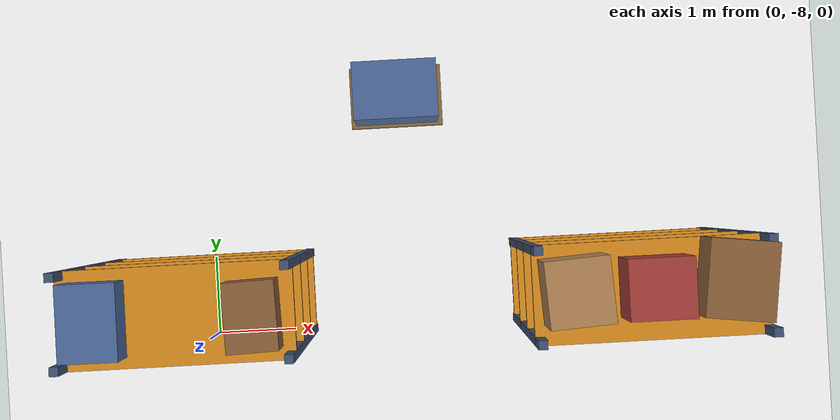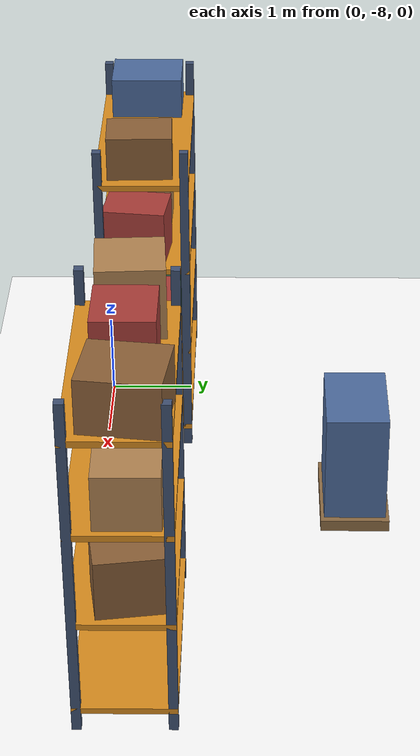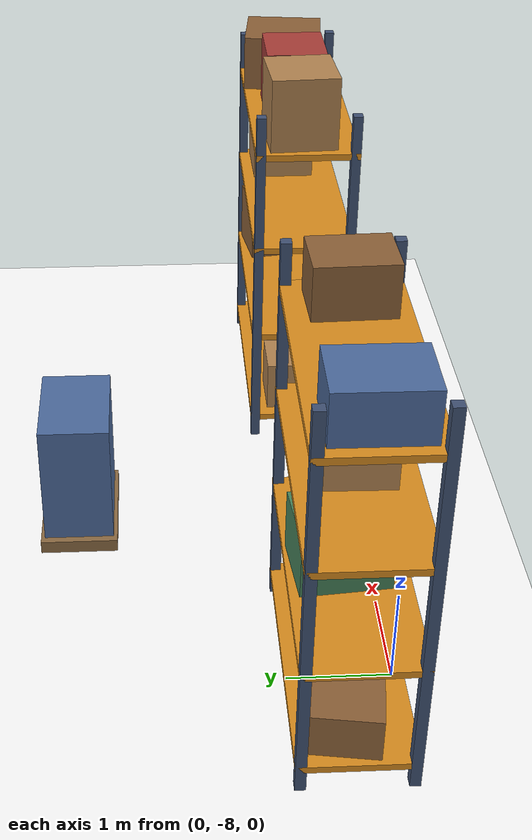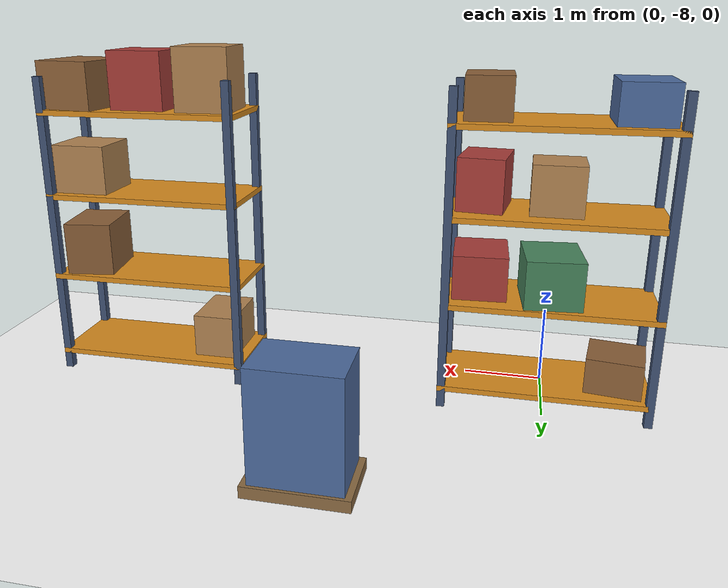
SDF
<sdf version="1.9">
 <world name="warehouse">
  <model name="ground_plane">
   <static>true</static>
   <link name="link">
    <collision name="collision">
     <geometry><plane><normal>0 0 1</normal><size>200 200</size></plane></geometry>
     <surface><friction><ode><mu>1.0</mu><mu2>1.0</mu2></ode></friction></surface>
    </collision>
    <visual name="visual">
     <geometry><plane><normal>0 0 1</normal><size>200 200</size></plane></geometry>
     <material>
      <ambient>0.5 0.5 0.5 1</ambient>
      <diffuse>1 1 1 1</diffuse>
      <pbr>
       <metal>
        <albedo_map>model://surfaces/materials/textures/floor.png</albedo_map>
        <metalness>0</metalness>
        <roughness>0.9</roughness>
       </metal>
      </pbr>
     </material>
    </visual>
   </link>
  </model>
  <model name="rack_0_2">
   <static>true</static>
   <pose>0 -7.5 0 0 0 0</pose>
   <link name="link">
    <visual name="upright_0_v">
     <pose>-1.25 -0.5 2 0 0 0</pose>
     <geometry><box><size>0.1 0.1 4</size></box></geometry>
     <material><ambient>0.125 0.16 0.225 1</ambient><diffuse>0.25 0.32 0.45 1</diffuse></material>
    </visual>
    <collision name="upright_0_c">
     <pose>-1.25 -0.5 2 0 0 0</pose>
     <geometry><box><size>0.1 0.1 4</size></box></geometry>
    </collision>
    <visual name="upright_1_v">
     <pose>-1.25 0.5 2 0 0 0</pose>
     <geometry><box><size>0.1 0.1 4</size></box></geometry>
     <material><ambient>0.125 0.16 0.225 1</ambient><diffuse>0.25 0.32 0.45 1</diffuse></material>
    </visual>
    <collision name="upright_1_c">
     <pose>-1.25 0.5 2 0 0 0</pose>
     <geometry><box><size>0.1 0.1 4</size></box></geometry>
    </collision>
    <visual name="upright_2_v">
     <pose>1.25 -0.5 2 0 0 0</pose>
     <geometry><box><size>0.1 0.1 4</size></box></geometry>
     <material><ambient>0.125 0.16 0.225 1</ambient><diffuse>0.25 0.32 0.45 1</diffuse></material>
    </visual>
    <collision name="upright_2_c">
     <pose>1.25 -0.5 2 0 0 0</pose>
     <geometry><box><size>0.1 0.1 4</size></box></geometry>
    </collision>
    <visual name="upright_3_v">
     <pose>1.25 0.5 2 0 0 0</pose>
     <geometry><box><size>0.1 0.1 4</size></box></geometry>
     <material><ambient>0.125 0.16 0.225 1</ambient><diffuse>0.25 0.32 0.45 1</diffuse></material>
    </visual>
    <collision name="upright_3_c">
     <pose>1.25 0.5 2 0 0 0</pose>
     <geometry><box><size>0.1 0.1 4</size></box></geometry>
    </collision>
    <visual name="deck_0_v">
     <pose>0 0 0.25 0 0 0</pose>
     <geometry><box><size>2.6 1.1 0.07</size></box></geometry>
     <material><ambient>0.425 0.275 0.06 1</ambient><diffuse>0.85 0.55 0.12 1</diffuse></material>
    </visual>
    <collision name="deck_0_c">
     <pose>0 0 0.25 0 0 0</pose>
     <geometry><box><size>2.6 1.1 0.07</size></box></geometry>
    </collision>
    <visual name="cargo_0_0_v">
     <pose>-0.8667 0.06622 0.5121 0 0 -0.1488</pose>
     <geometry><box><size>0.6817 0.6456 0.4542</size></box></geometry>
     <material><ambient>0.275 0.19 0.11 1</ambient><diffuse>0.55 0.38 0.22 1</diffuse></material>
    </visual>
    <collision name="cargo_0_0_c">
     <pose>-0.8667 0.06622 0.5121 0 0 -0.1488</pose>
     <geometry><box><size>0.6817 0.6456 0.4542</size></box></geometry>
    </collision>
    <visual name="deck_1_v">
     <pose>0 0 1.35 0 0 0</pose>
     <geometry><box><size>2.6 1.1 0.07</size></box></geometry>
     <material><ambient>0.425 0.275 0.06 1</ambient><diffuse>0.85 0.55 0.12 1</diffuse></material>
    </visual>
    <collision name="deck_1_c">
     <pose>0 0 1.35 0 0 0</pose>
     <geometry><box><size>2.6 1.1 0.07</size></box></geometry>
    </collision>
    <visual name="cargo_1_2_v">
     <pose>0.8667 -0.0749 1.666 0 0 0.04649</pose>
     <geometry><box><size>0.672 0.8148 0.5615</size></box></geometry>
     <material><ambient>0.33 0.12 0.11 1</ambient><diffuse>0.66 0.24 0.22 1</diffuse></material>
    </visual>
    <collision name="cargo_1_2_c">
     <pose>0.8667 -0.0749 1.666 0 0 0.04649</pose>
     <geometry><box><size>0.672 0.8148 0.5615</size></box></geometry>
    </collision>
    <visual name="cargo_1_1_v">
     <pose>0 0.0742 1.69 0 0 0.08936</pose>
     <geometry><box><size>0.698 0.838 0.6098</size></box></geometry>
     <material><ambient>0.14 0.26 0.18 1</ambient><diffuse>0.28 0.52 0.36 1</diffuse></material>
    </visual>
    <collision name="cargo_1_1_c">
     <pose>0 0.0742 1.69 0 0 0.08936</pose>
     <geometry><box><size>0.698 0.838 0.6098</size></box></geometry>
    </collision>
    <visual name="deck_2_v">
     <pose>0 0 2.45 0 0 0</pose>
     <geometry><box><size>2.6 1.1 0.07</size></box></geometry>
     <material><ambient>0.425 0.275 0.06 1</ambient><diffuse>0.85 0.55 0.12 1</diffuse></material>
    </visual>
    <collision name="deck_2_c">
     <pose>0 0 2.45 0 0 0</pose>
     <geometry><box><size>2.6 1.1 0.07</size></box></geometry>
    </collision>
    <visual name="cargo_2_1_v">
     <pose>0 -0.01991 2.794 0 0 -0.01781</pose>
     <geometry><box><size>0.6288 0.6477 0.6185</size></box></geometry>
     <material><ambient>0.35 0.26 0.16 1</ambient><diffuse>0.7 0.52 0.32 1</diffuse></material>
    </visual>
    <collision name="cargo_2_1_c">
     <pose>0 -0.01991 2.794 0 0 -0.01781</pose>
     <geometry><box><size>0.6288 0.6477 0.6185</size></box></geometry>
    </collision>
    <visual name="cargo_2_2_v">
     <pose>0.8667 -0.07952 2.815 0 0 -0.1196</pose>
     <geometry><box><size>0.572 0.7417 0.6603</size></box></geometry>
     <material><ambient>0.33 0.12 0.11 1</ambient><diffuse>0.66 0.24 0.22 1</diffuse></material>
    </visual>
    <collision name="cargo_2_2_c">
     <pose>0.8667 -0.07952 2.815 0 0 -0.1196</pose>
     <geometry><box><size>0.572 0.7417 0.6603</size></box></geometry>
    </collision>
    <visual name="deck_3_v">
     <pose>0 0 3.55 0 0 0</pose>
     <geometry><box><size>2.6 1.1 0.07</size></box></geometry>
     <material><ambient>0.425 0.275 0.06 1</ambient><diffuse>0.85 0.55 0.12 1</diffuse></material>
    </visual>
    <collision name="deck_3_c">
     <pose>0 0 3.55 0 0 0</pose>
     <geometry><box><size>2.6 1.1 0.07</size></box></geometry>
    </collision>
    <visual name="cargo_3_2_v">
     <pose>0.8667 -0.02475 3.846 0 0 0.03068</pose>
     <geometry><box><size>0.5641 0.7586 0.5228</size></box></geometry>
     <material><ambient>0.275 0.19 0.11 1</ambient><diffuse>0.55 0.38 0.22 1</diffuse></material>
    </visual>
    <collision name="cargo_3_2_c">
     <pose>0.8667 -0.02475 3.846 0 0 0.03068</pose>
     <geometry><box><size>0.5641 0.7586 0.5228</size></box></geometry>
    </collision>
    <visual name="cargo_3_0_v">
     <pose>-0.8667 -0.002386 3.83 0 0 -0.00485</pose>
     <geometry><box><size>0.6448 0.8445 0.4904</size></box></geometry>
     <material><ambient>0.15 0.21 0.31 1</ambient><diffuse>0.3 0.42 0.62 1</diffuse></material>
    </visual>
    <collision name="cargo_3_0_c">
     <pose>-0.8667 -0.002386 3.83 0 0 -0.00485</pose>
     <geometry><box><size>0.6448 0.8445 0.4904</size></box></geometry>
    </collision>
   </link>
  </model>
  <model name="rack_0_3">
   <static>true</static>
   <pose>5.2 -7.5 0 0 0 0</pose>
   <link name="link">
    <visual name="upright_0_v">
     <pose>-1.25 -0.5 2 0 0 0</pose>
     <geometry><box><size>0.1 0.1 4</size></box></geometry>
     <material><ambient>0.125 0.16 0.225 1</ambient><diffuse>0.25 0.32 0.45 1</diffuse></material>
    </visual>
    <collision name="upright_0_c">
     <pose>-1.25 -0.5 2 0 0 0</pose>
     <geometry><box><size>0.1 0.1 4</size></box></geometry>
    </collision>
    <visual name="upright_1_v">
     <pose>-1.25 0.5 2 0 0 0</pose>
     <geometry><box><size>0.1 0.1 4</size></box></geometry>
     <material><ambient>0.125 0.16 0.225 1</ambient><diffuse>0.25 0.32 0.45 1</diffuse></material>
    </visual>
    <collision name="upright_1_c">
     <pose>-1.25 0.5 2 0 0 0</pose>
     <geometry><box><size>0.1 0.1 4</size></box></geometry>
    </collision>
    <visual name="upright_2_v">
     <pose>1.25 -0.5 2 0 0 0</pose>
     <geometry><box><size>0.1 0.1 4</size></box></geometry>
     <material><ambient>0.125 0.16 0.225 1</ambient><diffuse>0.25 0.32 0.45 1</diffuse></material>
    </visual>
    <collision name="upright_2_c">
     <pose>1.25 -0.5 2 0 0 0</pose>
     <geometry><box><size>0.1 0.1 4</size></box></geometry>
    </collision>
    <visual name="upright_3_v">
     <pose>1.25 0.5 2 0 0 0</pose>
     <geometry><box><size>0.1 0.1 4</size></box></geometry>
     <material><ambient>0.125 0.16 0.225 1</ambient><diffuse>0.25 0.32 0.45 1</diffuse></material>
    </visual>
    <collision name="upright_3_c">
     <pose>1.25 0.5 2 0 0 0</pose>
     <geometry><box><size>0.1 0.1 4</size></box></geometry>
    </collision>
    <visual name="deck_0_v">
     <pose>0 0 0.25 0 0 0</pose>
     <geometry><box><size>2.6 1.1 0.07</size></box></geometry>
     <material><ambient>0.425 0.275 0.06 1</ambient><diffuse>0.85 0.55 0.12 1</diffuse></material>
    </visual>
    <collision name="deck_0_c">
     <pose>0 0 0.25 0 0 0</pose>
     <geometry><box><size>2.6 1.1 0.07</size></box></geometry>
    </collision>
    <visual name="cargo_0_0_v">
     <pose>-0.8667 -0.04705 0.57 0 0 0.0049</pose>
     <geometry><box><size>0.5704 0.8072 0.5699</size></box></geometry>
     <material><ambient>0.35 0.26 0.16 1</ambient><diffuse>0.7 0.52 0.32 1</diffuse></material>
    </visual>
    <collision name="cargo_0_0_c">
     <pose>-0.8667 -0.04705 0.57 0 0 0.0049</pose>
     <geometry><box><size>0.5704 0.8072 0.5699</size></box></geometry>
    </collision>
    <visual name="deck_1_v">
     <pose>0 0 1.35 0 0 0</pose>
     <geometry><box><size>2.6 1.1 0.07</size></box></geometry>
     <material><ambient>0.425 0.275 0.06 1</ambient><diffuse>0.85 0.55 0.12 1</diffuse></material>
    </visual>
    <collision name="deck_1_c">
     <pose>0 0 1.35 0 0 0</pose>
     <geometry><box><size>2.6 1.1 0.07</size></box></geometry>
    </collision>
    <visual name="cargo_1_2_v">
     <pose>0.8667 0.08283 1.731 0 0 0.1436</pose>
     <geometry><box><size>0.6224 0.7895 0.6915</size></box></geometry>
     <material><ambient>0.275 0.19 0.11 1</ambient><diffuse>0.55 0.38 0.22 1</diffuse></material>
    </visual>
    <collision name="cargo_1_2_c">
     <pose>0.8667 0.08283 1.731 0 0 0.1436</pose>
     <geometry><box><size>0.6224 0.7895 0.6915</size></box></geometry>
    </collision>
    <visual name="deck_2_v">
     <pose>0 0 2.45 0 0 0</pose>
     <geometry><box><size>2.6 1.1 0.07</size></box></geometry>
     <material><ambient>0.425 0.275 0.06 1</ambient><diffuse>0.85 0.55 0.12 1</diffuse></material>
    </visual>
    <collision name="deck_2_c">
     <pose>0 0 2.45 0 0 0</pose>
     <geometry><box><size>2.6 1.1 0.07</size></box></geometry>
    </collision>
    <visual name="cargo_2_2_v">
     <pose>0.8667 0.08165 2.801 0 0 0.009778</pose>
     <geometry><box><size>0.7191 0.6889 0.6314</size></box></geometry>
     <material><ambient>0.35 0.26 0.16 1</ambient><diffuse>0.7 0.52 0.32 1</diffuse></material>
    </visual>
    <collision name="cargo_2_2_c">
     <pose>0.8667 0.08165 2.801 0 0 0.009778</pose>
     <geometry><box><size>0.7191 0.6889 0.6314</size></box></geometry>
    </collision>
    <visual name="deck_3_v">
     <pose>0 0 3.55 0 0 0</pose>
     <geometry><box><size>2.6 1.1 0.07</size></box></geometry>
     <material><ambient>0.425 0.275 0.06 1</ambient><diffuse>0.85 0.55 0.12 1</diffuse></material>
    </visual>
    <collision name="deck_3_c">
     <pose>0 0 3.55 0 0 0</pose>
     <geometry><box><size>2.6 1.1 0.07</size></box></geometry>
    </collision>
    <visual name="cargo_3_1_v">
     <pose>0 0.04797 3.953 0 0 -0.002165</pose>
     <geometry><box><size>0.7112 0.6567 0.7364</size></box></geometry>
     <material><ambient>0.33 0.12 0.11 1</ambient><diffuse>0.66 0.24 0.22 1</diffuse></material>
    </visual>
    <collision name="cargo_3_1_c">
     <pose>0 0.04797 3.953 0 0 -0.002165</pose>
     <geometry><box><size>0.7112 0.6567 0.7364</size></box></geometry>
    </collision>
    <visual name="cargo_3_0_v">
     <pose>-0.8667 0.05802 3.983 0 0 0.05776</pose>
     <geometry><box><size>0.6962 0.7181 0.7964</size></box></geometry>
     <material><ambient>0.35 0.26 0.16 1</ambient><diffuse>0.7 0.52 0.32 1</diffuse></material>
    </visual>
    <collision name="cargo_3_0_c">
     <pose>-0.8667 0.05802 3.983 0 0 0.05776</pose>
     <geometry><box><size>0.6962 0.7181 0.7964</size></box></geometry>
    </collision>
    <visual name="cargo_3_2_v">
     <pose>0.8667 0.0874 3.888 0 0 -0.1258</pose>
     <geometry><box><size>0.7413 0.847 0.6065</size></box></geometry>
     <material><ambient>0.275 0.19 0.11 1</ambient><diffuse>0.55 0.38 0.22 1</diffuse></material>
    </visual>
    <collision name="cargo_3_2_c">
     <pose>0.8667 0.0874 3.888 0 0 -0.1258</pose>
     <geometry><box><size>0.7413 0.847 0.6065</size></box></geometry>
    </collision>
   </link>
  </model>
  <model name="pallet_stack_2">
   <static>true</static>
   <pose>2.5 -5 0 0 0 0</pose>
   <link name="link">
    <visual name="pallet_v">
     <pose>0 0 0.07 0 0 0</pose>
     <geometry><box><size>1.2 0.8 0.14</size></box></geometry>
     <material><ambient>0.275 0.21 0.13 1</ambient><diffuse>0.55 0.42 0.26 1</diffuse></material>
    </visual>
    <collision name="pallet_c">
     <pose>0 0 0.07 0 0 0</pose>
     <geometry><box><size>1.2 0.8 0.14</size></box></geometry>
    </collision>
    <visual name="load_v">
     <pose>0 0 0.8084 0 0 0</pose>
     <geometry><box><size>1.05 0.72 1.337</size></box></geometry>
     <material><ambient>0.15 0.21 0.31 1</ambient><diffuse>0.3 0.42 0.62 1</diffuse></material>
    </visual>
    <collision name="load_c">
     <pose>0 0 0.8084 0 0 0</pose>
     <geometry><box><size>1.05 0.72 1.337</size></box></geometry>
    </collision>
   </link>
  </model>
 </world>
</sdf>
